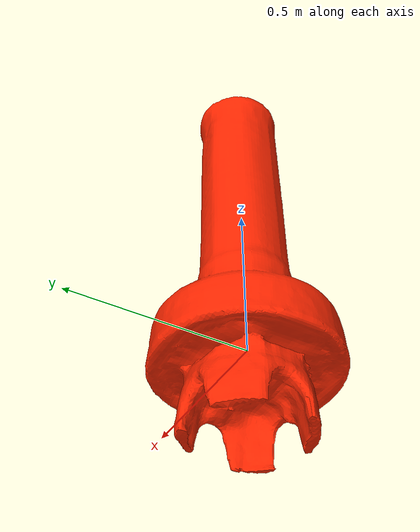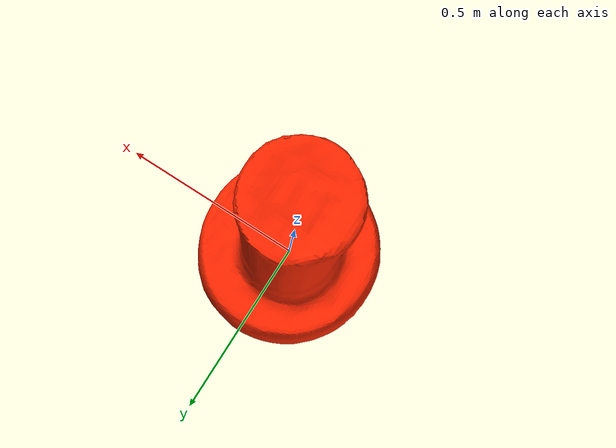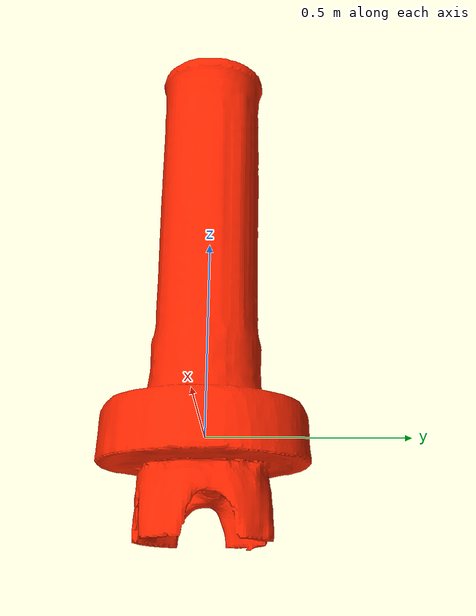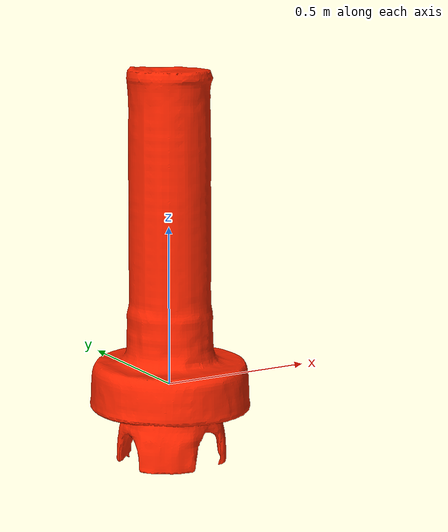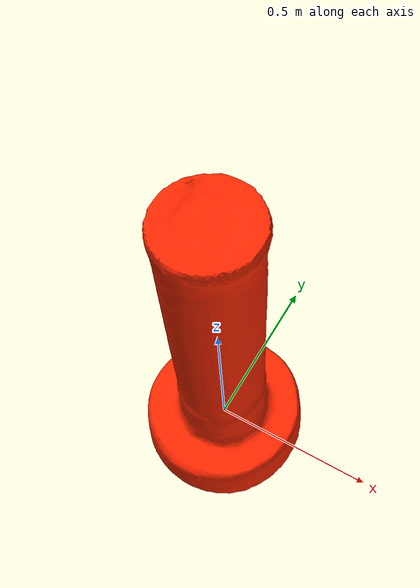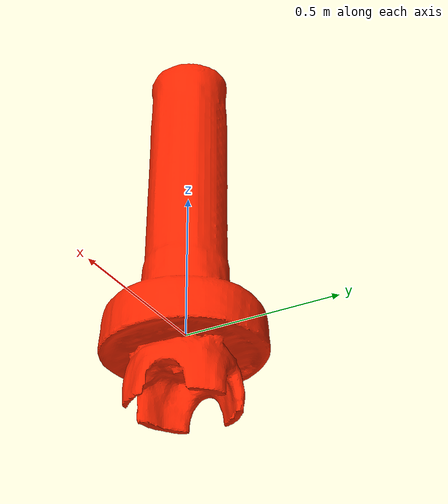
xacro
<?xml version="1.0"?>
<robot name="yellow_buoy" xmlns:xacro="http://www.ros.org/wiki/xacro">
  <link name=" link">
    <inertial>
      <origin xyz="0.0 0.0 0.0" rpy="0.0 0.0 0.0" />
      <mass value="5000" />
      <inertia ixx="1.0" ixy="0.0" ixz="0.0" iyy="1.0" iyz="0.0" izz="1.0" />
    </inertial>

    <visual>
      <origin />
      <geometry>
        <mesh filename="package://banyu_simulation/models/yellow_buoy/meshes/yellow_buoy.dae" />
      </geometry>
      <!-- Course marker is orange (gate stays yellow) so the detector separates them by colour. -->
      <material name="marker_orange">
        <color rgba="1.0 0.15 0.0 1.0" />
      </material>
    </visual>
    <collision name="collision_inner">
      <origin xyz=" 0 0 0.3637" />
      <geometry>
        <cylinder radius=" 0.15" length=" 1.26" />
      </geometry>
    </collision>
    <collision name="collision_outer">
      <origin xyz=" 0 0 -0.1117" />
      <geometry>
        <cylinder radius=" 0.24" length=" 0.15" />
      </geometry>
    </collision>
  </link>
  <gazebo>
    <static>true</static>
  </gazebo>
</robot>
